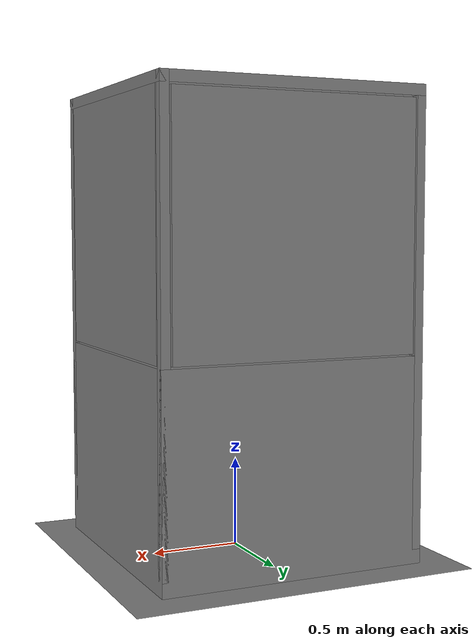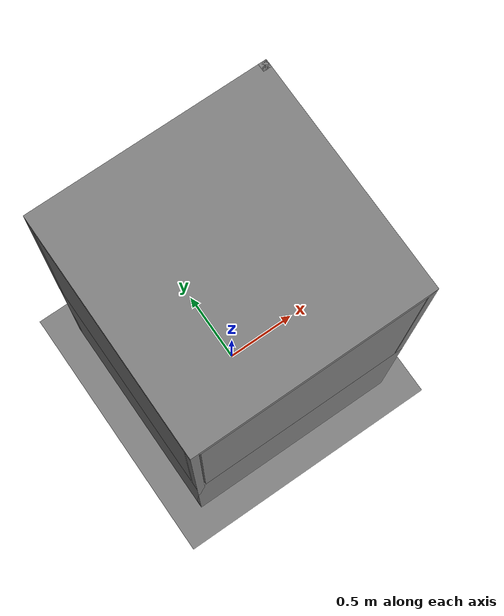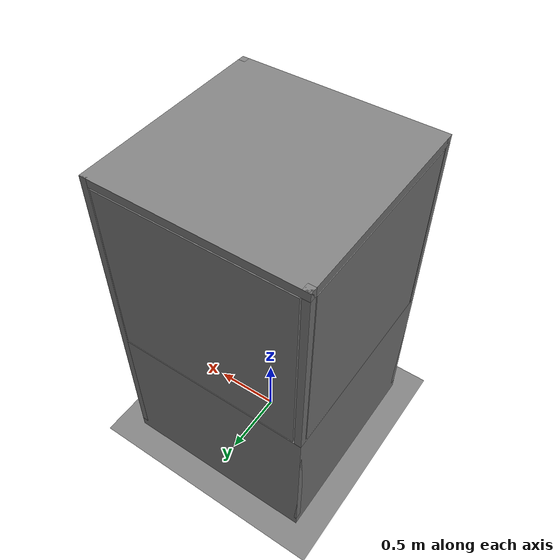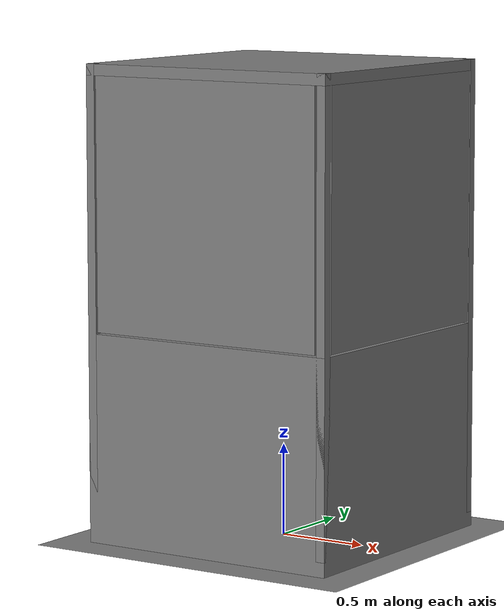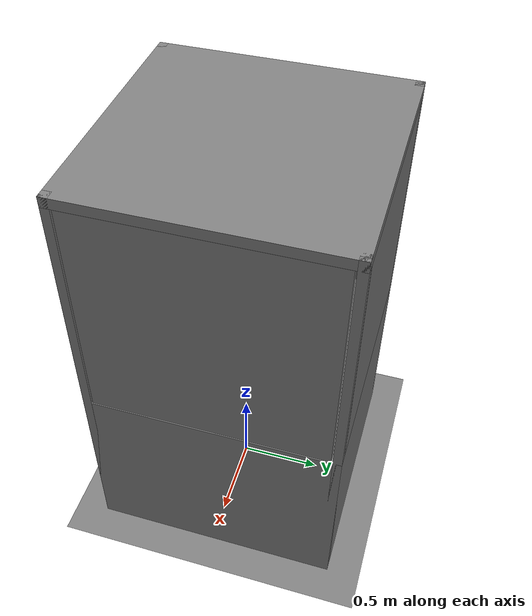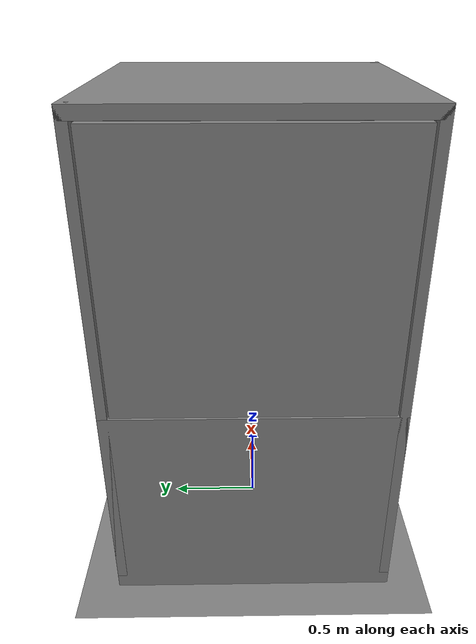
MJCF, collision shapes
<mujoco model="aic_world">
  <compiler angle="radian"/>

  <option gravity="0 0 -9.8" magnetic="5.5645e-06 2.28758e-05 -4.23884e-05"/>

  <visual>
    <headlight ambient="0 0 0" diffuse="0 0 0" specular="0 0 0"/>
  </visual>

  <default>
    <default class="world_default"/>
    <default class="cable_default">
      <joint damping="0.1"/>
    </default>
  </default>

  <extension>
    <plugin plugin="mujoco.elasticity.cable">
      <instance name="composite">
        <config key="twist" value="1e2"/>
        <config key="bend" value="4e1"/>
      </instance>
    </plugin>
  </extension>

  <asset>
    <texture type="2d" colorspace="linear" name="texture_7d2d03d984e0bd4273d245008f309f6a2ab0c0d6961ab1d51b3160a265d7b5a4_floor_visual_Plane" file="7d2d03d984e0bd4273d245008f309f6a2ab0c0d6961ab1d51b3160a265d7b5a4_floor_visual_b3a94635-54d6beff6424435d3828cb4c8a1278d9ea3964b0.png"/>
    <texture type="2d" colorspace="linear" name="texture_79d083415a0beb7006489abaa2f7f67624ecb5cc84df7fd21d83dada2e2c75a0_lc_plug_visual_merged_0" file="79d083415a0beb7006489abaa2f7f67624ecb5cc84df7fd21d83dada2e2c75a0_lc_plug_visual_03dabf32-0905e8a8aa368516e682f6ec84258100cdb4efef.png"/>
    <texture type="2d" colorspace="linear" name="texture_07ae86fedcbbab3b5759a8a6e79ba15af5075968dd5eac2cb4666913710c9b1a_sfp_module_visual_Body.005" file="07ae86fedcbbab3b5759a8a6e79ba15af5075968dd5eac2cb4666913710c9b1a_sfp_module_visual_8fc63b58-7471eafc55dcb668ae68adfe70a147b363ba3be9.png"/>
    <texture type="2d" colorspace="linear" name="texture_07ae86fedcbbab3b5759a8a6e79ba15af5075968dd5eac2cb4666913710c9b1a_sfp_module_visual_Body.005_1" file="07ae86fedcbbab3b5759a8a6e79ba15af5075968dd5eac2cb4666913710c9b1a_sfp_module_visual_1f09e86a-a4dc4a72bd6e778067310898a5c179607fd78966.png"/>
    <texture type="2d" colorspace="linear" name="texture_39e0c36083c2ebca1948ca6b7f99419210f3b34232289a37761dbe25cefc0443_sc_plug_visual_merged_0" file="39e0c36083c2ebca1948ca6b7f99419210f3b34232289a37761dbe25cefc0443_sc_plug_visual_5875f865-48f62b2f4840d852c7f39a01e6c183037dc1485b.png"/>
    <material name="material_21630dbca88254236676b9eaa3d656b1a410544dc4182b3953f5492d6064c1ce_enclosure_visual_V1014952.001" class="world_default" shininess="30" rgba="0.290196 0.290196 0.290196 1"/>
    <material name="material_21630dbca88254236676b9eaa3d656b1a410544dc4182b3953f5492d6064c1ce_enclosure_visual_V1014952.001_1" class="world_default" shininess="30" rgba="0.129412 0.129412 0.133333 1"/>
    <material name="material_21630dbca88254236676b9eaa3d656b1a410544dc4182b3953f5492d6064c1ce_light_visual_Plane.001" class="world_default" shininess="30" rgba="0.5 0.5 0.5 1"/>
    <material name="material_7d2d03d984e0bd4273d245008f309f6a2ab0c0d6961ab1d51b3160a265d7b5a4_floor_visual_Plane" class="world_default" texture="texture_7d2d03d984e0bd4273d245008f309f6a2ab0c0d6961ab1d51b3160a265d7b5a4_floor_visual_Plane" shininess="30" rgba="0.5 0.5 0.5 1"/>
    <material name="material_7d2d03d984e0bd4273d245008f309f6a2ab0c0d6961ab1d51b3160a265d7b5a4_walls_visual_Curve.001" class="world_default" shininess="30" rgba="0.0196078 0.0196078 0.0196078 1"/>
    <material name="material_7d2d03d984e0bd4273d245008f309f6a2ab0c0d6961ab1d51b3160a265d7b5a4_walls_visual_merged_1" class="world_default" shininess="30" rgba="0.262745 0.262745 0.262745 1"/>
    <material name="material_7d2d03d984e0bd4273d245008f309f6a2ab0c0d6961ab1d51b3160a265d7b5a4_walls_visual_Plane.003_1" class="world_default" shininess="30" rgba="0.8 0.8 0.8 1"/>
    <material name="material_7d2d03d984e0bd4273d245008f309f6a2ab0c0d6961ab1d51b3160a265d7b5a4_walls_visual_Plane.002" class="world_default" shininess="30" rgba="0.207843 0.207843 0.207843 1"/>
    <material name="material_79d083415a0beb7006489abaa2f7f67624ecb5cc84df7fd21d83dada2e2c75a0_lc_plug_visual_merged_0" class="world_default" texture="texture_79d083415a0beb7006489abaa2f7f67624ecb5cc84df7fd21d83dada2e2c75a0_lc_plug_visual_merged_0" shininess="30" rgba="0.5 0.5 0.5 1"/>
    <material name="material_07ae86fedcbbab3b5759a8a6e79ba15af5075968dd5eac2cb4666913710c9b1a_sfp_module_visual_Body.005" class="world_default" texture="texture_07ae86fedcbbab3b5759a8a6e79ba15af5075968dd5eac2cb4666913710c9b1a_sfp_module_visual_Body.005" shininess="30" rgba="0.5 0.5 0.5 1"/>
    <material name="material_07ae86fedcbbab3b5759a8a6e79ba15af5075968dd5eac2cb4666913710c9b1a_sfp_module_visual_Body.005_1" class="world_default" texture="texture_07ae86fedcbbab3b5759a8a6e79ba15af5075968dd5eac2cb4666913710c9b1a_sfp_module_visual_Body.005_1" shininess="30" rgba="0.5 0.5 0.5 1"/>
    <material name="material_39e0c36083c2ebca1948ca6b7f99419210f3b34232289a37761dbe25cefc0443_sc_plug_visual_merged_0" class="world_default" texture="texture_39e0c36083c2ebca1948ca6b7f99419210f3b34232289a37761dbe25cefc0443_sc_plug_visual_merged_0" shininess="30" rgba="0.5 0.5 0.5 1"/>
    <material name="material_19f4a95a97b71184a4988be290e52b57fe33862b52d650c82c5d8bc673fc5603_base_visual_ISO_4762_-_M3_x_8.019" class="world_default" shininess="30" rgba="0.0352941 0.0352941 0.0313726 1"/>
    <material name="material_19f4a95a97b71184a4988be290e52b57fe33862b52d650c82c5d8bc673fc5603_base_visual_ISO_4762_-_M3_x_8.019_1" class="world_default" shininess="30" rgba="0.0313726 0.0313726 0.0313726 1"/>
    <material name="material_19f4a95a97b71184a4988be290e52b57fe33862b52d650c82c5d8bc673fc5603_base_visual_ISO_4762_-_M3_x_8.019_2" class="world_default" shininess="30" rgba="0.215686 0 0.215686 1"/>
    <material name="material_0caf49b143bca9a0c9a13d66d2f75335ec2e74c5bba5cfb7bf0c411aed5bc2cd_sfp_mount_visual_ISO_4762_-_M2_x_8.011" class="world_default" shininess="30" rgba="0.0313726 0.0313726 0.0313726 1"/>
    <material name="material_0caf49b143bca9a0c9a13d66d2f75335ec2e74c5bba5cfb7bf0c411aed5bc2cd_sfp_mount_visual_ISO_4762_-_M2_x_8.011_1" class="world_default" shininess="30" rgba="0.0352941 0.0352941 0.0313726 1"/>
    <mesh name="21630dbca88254236676b9eaa3d656b1a410544dc4182b3953f5492d6064c1ce_enclosure_visual_V1014952.001" class="world_default" content_type="model/obj" file="21630dbca88254236676b9eaa3d656b1a410544dc4182b3953f5492d6064c1ce_enclosure_visual_V1014952.001-c990efe7b9dfe87aa065fd6eb3960ce051ae2aef.obj" inertia="shell"/>
    <mesh name="21630dbca88254236676b9eaa3d656b1a410544dc4182b3953f5492d6064c1ce_enclosure_visual_V1014952.001_1" class="world_default" content_type="model/obj" file="21630dbca88254236676b9eaa3d656b1a410544dc4182b3953f5492d6064c1ce_enclosure_visual_V1014952.001_1-807e07de06af157c84b994a232617507a7059420.obj" inertia="shell"/>
    <mesh name="21630dbca88254236676b9eaa3d656b1a410544dc4182b3953f5492d6064c1ce_light_visual_Plane.001" class="world_default" content_type="model/obj" file="21630dbca88254236676b9eaa3d656b1a410544dc4182b3953f5492d6064c1ce_light_visual_Plane.001-a8a774a80bc239d73769a498eae528b206eebcb0.obj" inertia="shell"/>
    <mesh name="7d2d03d984e0bd4273d245008f309f6a2ab0c0d6961ab1d51b3160a265d7b5a4_floor_visual_Plane" class="world_default" content_type="model/obj" file="7d2d03d984e0bd4273d245008f309f6a2ab0c0d6961ab1d51b3160a265d7b5a4_floor_visual_Plane-4dc7f6150ad7c239769a0860a01efb2015657aea.obj" inertia="shell"/>
    <mesh name="7d2d03d984e0bd4273d245008f309f6a2ab0c0d6961ab1d51b3160a265d7b5a4_walls_visual_Curve.001" class="world_default" content_type="model/obj" file="7d2d03d984e0bd4273d245008f309f6a2ab0c0d6961ab1d51b3160a265d7b5a4_walls_visual_Curve.001-4d7c79ac2e958832fdb15589262141ca1b80d3a5.obj" inertia="shell"/>
    <mesh name="7d2d03d984e0bd4273d245008f309f6a2ab0c0d6961ab1d51b3160a265d7b5a4_walls_visual_merged_1" class="world_default" content_type="model/obj" file="7d2d03d984e0bd4273d245008f309f6a2ab0c0d6961ab1d51b3160a265d7b5a4_walls_visual_merged_1-359a22140d528747936e80bedf90e1437a177a9f.obj" inertia="shell"/>
    <mesh name="7d2d03d984e0bd4273d245008f309f6a2ab0c0d6961ab1d51b3160a265d7b5a4_walls_visual_Plane.003_1" class="world_default" content_type="model/obj" file="7d2d03d984e0bd4273d245008f309f6a2ab0c0d6961ab1d51b3160a265d7b5a4_walls_visual_Plane.003_1-cd05ed21fa19a2784fb772d7519abf7c31c8b85f.obj" inertia="shell"/>
    <mesh name="7d2d03d984e0bd4273d245008f309f6a2ab0c0d6961ab1d51b3160a265d7b5a4_walls_visual_Plane.002" class="world_default" content_type="model/obj" file="7d2d03d984e0bd4273d245008f309f6a2ab0c0d6961ab1d51b3160a265d7b5a4_walls_visual_Plane.002-ee4f781765eec46c2256d941981732d4b1857f24.obj" inertia="shell"/>
    <mesh name="79d083415a0beb7006489abaa2f7f67624ecb5cc84df7fd21d83dada2e2c75a0_lc_plug_visual_merged_0" class="world_default" content_type="model/obj" file="79d083415a0beb7006489abaa2f7f67624ecb5cc84df7fd21d83dada2e2c75a0_lc_plug_visual_merged_0-fdaf59710fc3cc118a7df05add4ff4205edda4ef.obj" inertia="shell"/>
    <mesh name="07ae86fedcbbab3b5759a8a6e79ba15af5075968dd5eac2cb4666913710c9b1a_sfp_module_visual_Body.005" class="world_default" content_type="model/obj" file="07ae86fedcbbab3b5759a8a6e79ba15af5075968dd5eac2cb4666913710c9b1a_sfp_module_visual_Body.005-f93147e1e403de321fb70c06a4b1e00f20feb9fd.obj" inertia="shell"/>
    <mesh name="07ae86fedcbbab3b5759a8a6e79ba15af5075968dd5eac2cb4666913710c9b1a_sfp_module_visual_Body.005_1" class="world_default" content_type="model/obj" file="07ae86fedcbbab3b5759a8a6e79ba15af5075968dd5eac2cb4666913710c9b1a_sfp_module_visual_Body.005_1-4af964a95522e2593eb6381eca4f09ef239782c7.obj" inertia="shell"/>
    <mesh name="39e0c36083c2ebca1948ca6b7f99419210f3b34232289a37761dbe25cefc0443_sc_plug_visual_merged_0" class="world_default" content_type="model/obj" file="39e0c36083c2ebca1948ca6b7f99419210f3b34232289a37761dbe25cefc0443_sc_plug_visual_merged_0-67f94accf247f722dd4954d7448d7956402901f2.obj" inertia="shell"/>
    <mesh name="19f4a95a97b71184a4988be290e52b57fe33862b52d650c82c5d8bc673fc5603_base_visual_ISO_4762_-_M3_x_8.019" class="world_default" content_type="model/obj" file="19f4a95a97b71184a4988be290e52b57fe33862b52d650c82c5d8bc673fc5603_base_visual_ISO_4762_-_M3_x_8.019-f814bb518c42769543ab6246809f3fe4af5c2b64.obj" inertia="shell"/>
    <mesh name="19f4a95a97b71184a4988be290e52b57fe33862b52d650c82c5d8bc673fc5603_base_visual_ISO_4762_-_M3_x_8.019_1" class="world_default" content_type="model/obj" file="19f4a95a97b71184a4988be290e52b57fe33862b52d650c82c5d8bc673fc5603_base_visual_ISO_4762_-_M3_x_8.019_1-0b276ba9910a7642121235b62d2afc47c3995782.obj" inertia="shell"/>
    <mesh name="19f4a95a97b71184a4988be290e52b57fe33862b52d650c82c5d8bc673fc5603_base_visual_ISO_4762_-_M3_x_8.019_2" class="world_default" content_type="model/obj" file="19f4a95a97b71184a4988be290e52b57fe33862b52d650c82c5d8bc673fc5603_base_visual_ISO_4762_-_M3_x_8.019_2-7b96569be9572803417c5650ee83c9c883b44191.obj" inertia="shell"/>
    <mesh name="0caf49b143bca9a0c9a13d66d2f75335ec2e74c5bba5cfb7bf0c411aed5bc2cd_sfp_mount_visual_ISO_4762_-_M2_x_8.011" class="world_default" content_type="model/obj" file="0caf49b143bca9a0c9a13d66d2f75335ec2e74c5bba5cfb7bf0c411aed5bc2cd_sfp_mount_visual_ISO_4762_-_M2_x_8.011-e79a298280ce559f60558a5df64e118c814f63e4.obj" inertia="shell"/>
    <mesh name="0caf49b143bca9a0c9a13d66d2f75335ec2e74c5bba5cfb7bf0c411aed5bc2cd_sfp_mount_visual_ISO_4762_-_M2_x_8.011_1" class="world_default" content_type="model/obj" file="0caf49b143bca9a0c9a13d66d2f75335ec2e74c5bba5cfb7bf0c411aed5bc2cd_sfp_mount_visual_ISO_4762_-_M2_x_8.011_1-3a79ef8883f6645921d3fa2c67cf381141e6ea26.obj" inertia="shell"/>
  </asset>

  <worldbody>
    <light name="enclosure_light" class="world_default" pos="0 0 2.5" dir="0 0 -1" intensity="0.4" range="2" attenuation="1 0.01 0.001" cutoff="114.592" exponent="0.993023" diffuse="1 1 1" specular="0.1 0.1 0.1"/>
    <light name="ceiling_01" class="world_default" pos="2 2 6" dir="0 0 -1" intensity="2" range="9" castshadow="false" attenuation="1 0.01 0.001" cutoff="360" diffuse="1 1 1" specular="0.1 0.1 0.1"/>
    <light name="ceiling_02" class="world_default" pos="-2 -2 6" dir="0 0 -1" intensity="2" range="9" castshadow="false" attenuation="1 0.01 0.001" cutoff="360" diffuse="1 1 1" specular="0.1 0.1 0.1"/>
    <body name="enclosure_link">
      <inertial pos="0 0 0" mass="1" diaginertia="1 1 1"/>
      <geom name="v1015026001_collider_box" class="world_default" size="0.75 0.569492 0.75" pos="-0.010998 0.009283 0.569706" quat="-1.22475e-07 1.22474e-07 -0.707107 -0.707107" type="box" group="3"/>
      <geom name="v1015028001_collider_box" class="world_default" size="0.0254 0.0254 1.25" pos="0.713602 0.733883 1.3292" quat="1.73205e-07 0 0 -1" type="box" group="3"/>
      <geom name="v1015013001_collider_box" class="world_default" size="0.0304 0.75 0.75" pos="-0.010998 0.009283 2.5488" quat="0.707107 0 -0.707107 0" type="box" group="3"/>
      <geom name="v1015027_collider_box" class="world_default" size="0.0254 0.0254 1.25" pos="-0.735598 0.733883 1.3292" quat="1.73205e-07 0 0 -1" type="box" group="3"/>
      <geom name="v1015029_collider_box" class="world_default" size="0.0254 0.0254 1.25" pos="-0.735598 -0.715317 1.3292" quat="0 1.73205e-07 -1 -1.73205e-07" type="box" group="3"/>
      <geom name="v1015030_collider_box" class="world_default" size="0.0254 0.0254 1.25" pos="0.713602 -0.715317 1.3292" quat="1.73205e-07 0 0 -1" type="box" group="3"/>
      <geom name="enclosure_visual" class="world_default" type="mesh" contype="0" conaffinity="0" material="material_21630dbca88254236676b9eaa3d656b1a410544dc4182b3953f5492d6064c1ce_enclosure_visual_V1014952.001" mesh="21630dbca88254236676b9eaa3d656b1a410544dc4182b3953f5492d6064c1ce_enclosure_visual_V1014952.001"/>
      <geom name="enclosure_visual_0" class="world_default" type="mesh" contype="0" conaffinity="0" material="material_21630dbca88254236676b9eaa3d656b1a410544dc4182b3953f5492d6064c1ce_enclosure_visual_V1014952.001_1" mesh="21630dbca88254236676b9eaa3d656b1a410544dc4182b3953f5492d6064c1ce_enclosure_visual_V1014952.001_1"/>
      <geom name="light_visual" class="world_default" type="mesh" contype="0" conaffinity="0" material="material_21630dbca88254236676b9eaa3d656b1a410544dc4182b3953f5492d6064c1ce_light_visual_Plane.001" mesh="21630dbca88254236676b9eaa3d656b1a410544dc4182b3953f5492d6064c1ce_light_visual_Plane.001"/>
    </body>
    <body name="enclosure_walls_link">
      <inertial pos="0 0 0" mass="1" diaginertia="1 1 1"/>
      <geom name="v1015062006_collider_box" class="world_default" size="0.0250005 0.6796 0.6892" pos="-0.010998 0.734284 1.8288" quat="0.5 0.5 -0.5 -0.5" type="box" group="3"/>
      <geom name="v1015062005_collider_box" class="world_default" size="0.6892 0.6796 0.025" pos="-0.735998 0.009283 1.8288" quat="0.5 0.5 -0.5 -0.5" type="box" group="3"/>
      <geom name="v1015062007_collider_box" class="world_default" size="0.025 0.6846 0.6892" pos="-0.010998 -0.715717 1.8338" quat="0.5 0.5 -0.5 -0.5" type="box" group="3"/>
      <geom name="v1015062008_collider_box" class="world_default" size="0.6892 0.6846 0.025" pos="0.714002 0.009283 1.8338" quat="0.5 0.5 -0.5 -0.5" type="box" group="3"/>
    </body>
    <body name="floor_link">
      <inertial pos="0 0 0" mass="1" diaginertia="1 1 1"/>
      <geom name="floor_cylinder" class="world_default" size="5 5 1" type="plane" group="3"/>
      <geom name="floor_visual" class="world_default" type="mesh" contype="0" conaffinity="0" material="material_7d2d03d984e0bd4273d245008f309f6a2ab0c0d6961ab1d51b3160a265d7b5a4_floor_visual_Plane" mesh="7d2d03d984e0bd4273d245008f309f6a2ab0c0d6961ab1d51b3160a265d7b5a4_floor_visual_Plane"/>
      <geom name="walls_visual" class="world_default" type="mesh" contype="0" conaffinity="0" material="material_7d2d03d984e0bd4273d245008f309f6a2ab0c0d6961ab1d51b3160a265d7b5a4_walls_visual_Curve.001" mesh="7d2d03d984e0bd4273d245008f309f6a2ab0c0d6961ab1d51b3160a265d7b5a4_walls_visual_Curve.001"/>
      <geom name="walls_visual_0" class="world_default" type="mesh" contype="0" conaffinity="0" material="material_7d2d03d984e0bd4273d245008f309f6a2ab0c0d6961ab1d51b3160a265d7b5a4_walls_visual_merged_1" mesh="7d2d03d984e0bd4273d245008f309f6a2ab0c0d6961ab1d51b3160a265d7b5a4_walls_visual_merged_1"/>
      <geom name="walls_visual_1" class="world_default" type="mesh" contype="0" conaffinity="0" material="material_7d2d03d984e0bd4273d245008f309f6a2ab0c0d6961ab1d51b3160a265d7b5a4_walls_visual_Plane.003_1" mesh="7d2d03d984e0bd4273d245008f309f6a2ab0c0d6961ab1d51b3160a265d7b5a4_walls_visual_Plane.003_1"/>
      <geom name="walls_visual_2" class="world_default" type="mesh" contype="0" conaffinity="0" material="material_7d2d03d984e0bd4273d245008f309f6a2ab0c0d6961ab1d51b3160a265d7b5a4_walls_visual_Plane.002" mesh="7d2d03d984e0bd4273d245008f309f6a2ab0c0d6961ab1d51b3160a265d7b5a4_walls_visual_Plane.002"/>
    </body>
    <body name="cable_end_0" childclass="cable_default" pos="0.171400 0.020606 1.511889" quat="0.712741 0.312130 -0.052173 0.625982">
      <freejoint name="cable_end_0_free"/>
      <inertial pos="0 0 0" mass="0.0025" diaginertia="1e-6 1e-6 1e-6"/>
      <geom name="base_vis" class="world_default" size="0.002" contype="0" conaffinity="0"/>
      <body name="cable_connection_0" pos="1.25047e-08 8.16282e-08 -1.95829e-07" quat="0.568653 -0.7585 -0.304364 -0.0931319">
        <inertial pos="0 0 0" mass="0.01" diaginertia="1e-6 1e-6 1e-6"/>
        <joint name="joint_connection_end_0" class="world_default" pos="0 0 0" type="ball" damping="0.2"/>
        <geom name="visual_0_0" class="world_default" size="0.001 0.00367636" pos="-0.00367636 0.00425 0" quat="0.673802 0.214463 0.673798 -0.214461" type="cylinder" contype="0" conaffinity="0"/>
        <geom name="visual_1_0" class="world_default" size="0.001 0.00367636" pos="-0.00367636 -0.00425 0" quat="0.673802 -0.214463 0.673798 0.214461" type="cylinder" contype="0" conaffinity="0"/>
        <body name="link_1" pos="0.00491422 0.0231421 -0.00403678" quat="0.105615 -0.279044 -0.711501 -0.636197">
          <inertial pos="0 0 0" mass="0.0025" diaginertia="1e-6 1e-6 1e-6"/>
          <joint name="joint_end_0" pos="0 0 -0.024" type="ball"/>
          <geom name="link_1_collision" size="0.002 0.018" pos="0 0 0.006" type="cylinder" group="3"/>
          <geom name="sphere_1_collision" size="0.002" pos="0 0 0.024" group="3"/>
          <geom name="link_1_vis" size="0.002 0.024" type="cylinder" contype="0" conaffinity="0"/>
          <geom name="sphere_1_vis" size="0.002" pos="0 0 0.024" contype="0" conaffinity="0"/>
          <body name="link_2" pos="0.00608341 -0.00758186 0.0459437" quat="0.978077 0.158393 0.133259 -0.0227629">
            <inertial pos="0 0 0" mass="0.0025" diaginertia="1e-6 1e-6 1e-6"/>
            <joint name="joint_1" pos="0 0 -0.024" type="ball"/>
            <geom name="link_2_collision" size="0.002 0.024" type="cylinder" group="3"/>
            <geom name="sphere_2_collision" size="0.002" pos="0 0 0.024" group="3"/>
            <geom name="link_2_vis" size="0.002 0.024" type="cylinder" contype="0" conaffinity="0"/>
            <geom name="sphere_2_vis" size="0.002" pos="0 0 0.024" contype="0" conaffinity="0"/>
            <body name="link_3" pos="0.000343805 -0.00668268 0.0470486" quat="0.989784 0.140421 0.0104012 -0.0223824">
              <inertial pos="0 0 0" mass="0.0025" diaginertia="1e-6 1e-6 1e-6"/>
              <joint name="joint_2" pos="0 0 -0.024" type="ball"/>
              <geom name="link_3_collision" size="0.002 0.024" type="cylinder" group="3"/>
              <geom name="sphere_3_collision" size="0.002" pos="0 0 0.024" group="3"/>
              <geom name="link_3_vis" size="0.002 0.024" type="cylinder" contype="0" conaffinity="0"/>
              <geom name="sphere_3_vis" size="0.002" pos="0 0 0.024" contype="0" conaffinity="0"/>
              <body name="link_4" pos="-0.0022296 -0.00468828 0.0474319" quat="0.993743 0.0994111 -0.044222 -0.0252245">
                <inertial pos="0 0 0" mass="0.0025" diaginertia="1e-6 1e-6 1e-6"/>
                <joint name="joint_3" pos="0 0 -0.024" type="ball"/>
                <geom name="link_4_collision" size="0.002 0.024" type="cylinder" group="3"/>
                <geom name="sphere_4_collision" size="0.002" pos="0 0 0.024" group="3"/>
                <geom name="link_4_vis" size="0.002 0.024" type="cylinder" contype="0" conaffinity="0"/>
                <geom name="sphere_4_vis" size="0.002" pos="0 0 0.024" contype="0" conaffinity="0"/>
                <body name="link_5" pos="-0.00370041 -0.00315661 0.0475025" quat="0.99397 0.0692135 -0.0747307 -0.0405953">
                  <inertial pos="0 0 0" mass="0.0025" diaginertia="1e-6 1e-6 1e-6"/>
                  <joint name="joint_4" pos="0 0 -0.024" type="ball"/>
                  <geom name="link_5_collision" size="0.002 0.024" type="cylinder" group="3"/>
                  <geom name="sphere_5_collision" size="0.002" pos="0 0 0.024" group="3"/>
                  <geom name="link_5_vis" size="0.002 0.024" type="cylinder" contype="0" conaffinity="0"/>
                  <geom name="sphere_5_vis" size="0.002" pos="0 0 0.024" contype="0" conaffinity="0"/>
                  <body name="link_6" pos="-0.00400972 -0.0018031 0.0475941" quat="0.993712 0.04303 -0.0813204 -0.0638035">
                    <inertial pos="0 0 0" mass="0.0025" diaginertia="1e-6 1e-6 1e-6"/>
                    <joint name="joint_5" pos="0 0 -0.024" type="ball"/>
                    <geom name="link_6_collision" size="0.002 0.024" type="cylinder" group="3"/>
                    <geom name="sphere_6_collision" size="0.002" pos="0 0 0.024" group="3"/>
                    <geom name="link_6_vis" size="0.002 0.024" type="cylinder" contype="0" conaffinity="0"/>
                    <geom name="sphere_6_vis" size="0.002" pos="0 0 0.024" contype="0" conaffinity="0"/>
                    <body name="link_7" pos="-0.00351767 -0.000710191 0.0477308" quat="0.993356 0.0212091 -0.0719119 -0.0873041">
                      <inertial pos="0 0 0" mass="0.0025" diaginertia="1e-6 1e-6 1e-6"/>
                      <joint name="joint_6" pos="0 0 -0.024" type="ball"/>
                      <geom name="link_7_collision" size="0.002 0.024" type="cylinder" group="3"/>
                      <geom name="sphere_7_collision" size="0.002" pos="0 0 0.024" group="3"/>
                      <geom name="link_7_vis" size="0.002 0.024" type="cylinder" contype="0" conaffinity="0"/>
                      <geom name="sphere_7_vis" size="0.002" pos="0 0 0.024" contype="0" conaffinity="0"/>
                      <body name="link_8" pos="-0.00241602 0.000201002 0.047878" quat="0.993427 0.00100338 -0.0505653 -0.102685">
                        <inertial pos="0 0 0" mass="0.0025" diaginertia="1e-6 1e-6 1e-6"/>
                        <joint name="joint_7" pos="0 0 -0.024" type="ball"/>
                        <geom name="link_8_collision" size="0.002 0.024" type="cylinder" group="3"/>
                        <geom name="sphere_8_collision" size="0.002" pos="0 0 0.024" group="3"/>
                        <geom name="link_8_vis" size="0.002 0.024" type="cylinder" contype="0" conaffinity="0"/>
                        <geom name="sphere_8_vis" size="0.002" pos="0 0 0.024" contype="0" conaffinity="0"/>
                        <body name="link_9" pos="-0.00117212 0.0010058 0.0479515" quat="0.993968 -0.0182862 -0.0264966 -0.104842">
                          <inertial pos="0 0 0" mass="0.0025" diaginertia="1e-6 1e-6 1e-6"/>
                          <joint name="joint_8" pos="0 0 -0.024" type="ball"/>
                          <geom name="link_9_collision" size="0.002 0.024" type="cylinder" group="3"/>
                          <geom name="sphere_9_collision" size="0.002" pos="0 0 0.024" group="3"/>
                          <geom name="link_9_vis" size="0.002 0.024" type="cylinder" contype="0" conaffinity="0"/>
                          <geom name="sphere_9_vis" size="0.002" pos="0 0 0.024" contype="0" conaffinity="0"/>
                          <body name="link_10" pos="-0.000282197 0.00176883 0.0479333" quat="0.994692 -0.0361244 -0.00940201 -0.0958879">
                            <inertial pos="0 0 0" mass="0.0025" diaginertia="1e-6 1e-6 1e-6"/>
                            <joint name="joint_9" pos="0 0 -0.024" type="ball"/>
                            <geom name="link_10_collision" size="0.002 0.024" type="cylinder" group="3"/>
                            <geom name="sphere_10_collision" size="0.002" pos="0 0 0.024" group="3"/>
                            <geom name="link_10_vis" size="0.002 0.024" type="cylinder" contype="0" conaffinity="0"/>
                            <geom name="sphere_10_vis" size="0.002" pos="0 0 0.024" contype="0" conaffinity="0"/>
                            <body name="link_11" pos="0.0012752 0.00268708 0.0478161" quat="0.993821 -0.0583049 0.0213245 -0.0920072">
                              <inertial pos="0 0 0" mass="0.0025" diaginertia="1e-6 1e-6 1e-6"/>
                              <joint name="joint_10" pos="0 0 -0.024" type="ball"/>
                              <geom name="link_11_collision" size="0.002 0.024" type="cylinder" group="3"/>
                              <geom name="sphere_11_collision" size="0.002" pos="0 0 0.024" group="3"/>
                              <geom name="link_11_vis" size="0.002 0.024" type="cylinder" contype="0" conaffinity="0"/>
                              <geom name="sphere_11_vis" size="0.002" pos="0 0 0.024" contype="0" conaffinity="0"/>
                              <body name="link_12" pos="0.00327072 0.00422971 0.0473986" quat="0.991317 -0.0932098 0.0622678 -0.0687446">
                                <inertial pos="0 0 0" mass="0.0025" diaginertia="1e-6 1e-6 1e-6"/>
                                <joint name="joint_11" pos="0 0 -0.024" type="ball"/>
                                <geom name="link_12_collision" size="0.002 0.024" type="cylinder" group="3"/>
                                <geom name="sphere_12_collision" size="0.002" pos="0 0 0.024" group="3"/>
                                <geom name="link_12_vis" size="0.002 0.024" type="cylinder" contype="0" conaffinity="0"/>
                                <geom name="sphere_12_vis" size="0.002" pos="0 0 0.024" contype="0" conaffinity="0"/>
                                <body name="link_13" pos="0.00482261 0.00599302 0.0467345" quat="0.985833 -0.13074 0.0963345 -0.0419445">
                                  <inertial pos="0 0 0" mass="0.0025" diaginertia="1e-6 1e-6 1e-6"/>
                                  <joint name="joint_12" pos="0 0 -0.024" type="ball"/>
                                  <geom name="link_13_collision" size="0.002 0.024" type="cylinder" group="3"/>
                                  <geom name="sphere_13_collision" size="0.002" pos="0 0 0.024" group="3"/>
                                  <geom name="link_13_vis" size="0.002 0.024" type="cylinder" contype="0" conaffinity="0"/>
                                  <geom name="sphere_13_vis" size="0.002" pos="0 0 0.024" contype="0" conaffinity="0"/>
                                  <body name="link_14" pos="0.00591403 0.00751494 0.0460132" quat="0.978954 -0.161892 0.123267 -0.0156344">
                                    <inertial pos="0 0 0" mass="0.0025" diaginertia="1e-6 1e-6 1e-6"/>
                                    <joint name="joint_13" pos="0 0 -0.024" type="ball"/>
                                    <geom name="link_14_collision" size="0.002 0.024" type="cylinder" group="3"/>
                                    <geom name="sphere_14_collision" size="0.002" pos="0 0 0.024" group="3"/>
                                    <geom name="link_14_vis" size="0.002 0.024" type="cylinder" contype="0" conaffinity="0"/>
                                    <geom name="sphere_14_vis" size="0.002" pos="0 0 0.024" contype="0" conaffinity="0"/>
                                    <body name="link_15" pos="0.00664439 0.00819207 0.0455587" quat="0.974202 -0.174008 0.14349 0.00795143">
                                      <inertial pos="0 0 0" mass="0.0025" diaginertia="1e-6 1e-6 1e-6"/>
                                      <joint name="joint_14" pos="0 0 -0.024" type="ball"/>
                                      <geom name="link_15_collision" size="0.002 0.024" type="cylinder" group="3"/>
                                      <geom name="sphere_15_collision" size="0.002" pos="0 0 0.024" group="3"/>
                                      <geom name="link_15_vis" size="0.002 0.024" type="cylinder" contype="0" conaffinity="0"/>
                                      <geom name="sphere_15_vis" size="0.002" pos="0 0 0.024" contype="0" conaffinity="0"/>
                                      <body name="link_16" pos="0.00692301 0.00767899 0.0456603" quat="0.974941 -0.159938 0.152309 0.026676">
                                        <inertial pos="0 0 0" mass="0.0025" diaginertia="1e-6 1e-6 1e-6"/>
                                        <joint name="joint_15" pos="0 0 -0.024" type="ball"/>
                                        <geom name="link_16_collision" size="0.002 0.024" type="cylinder" group="3"/>
                                        <geom name="sphere_16_collision" size="0.002" pos="0 0 0.024" group="3"/>
                                        <geom name="link_16_vis" size="0.002 0.024" type="cylinder" contype="0" conaffinity="0"/>
                                        <geom name="sphere_16_vis" size="0.002" pos="0 0 0.024" contype="0" conaffinity="0"/>
                                        <body name="link_17" pos="0.00681244 0.00604806 0.0462056" quat="0.980344 -0.122562 0.149622 0.038944">
                                          <inertial pos="0 0 0" mass="0.0025" diaginertia="1e-6 1e-6 1e-6"/>
                                          <joint name="joint_16" pos="0 0 -0.024" type="ball"/>
                                          <geom name="link_17_collision" size="0.002 0.024" type="cylinder" group="3"/>
                                          <geom name="sphere_17_collision" size="0.002" pos="0 0 0.024" group="3"/>
                                          <geom name="link_17_vis" size="0.002 0.024" type="cylinder" contype="0" conaffinity="0"/>
                                          <geom name="sphere_17_vis" size="0.002" pos="0 0 0.024" contype="0" conaffinity="0"/>
                                          <body name="link_18" pos="0.00640867 0.00357157 0.0468514" quat="0.987016 -0.0693119 0.138307 0.0431988">
                                            <inertial pos="0 0 0" mass="0.0025" diaginertia="1e-6 1e-6 1e-6"/>
                                            <joint name="joint_17" pos="0 0 -0.024" type="ball"/>
                                            <geom name="link_18_collision" size="0.002 0.024" type="cylinder" group="3"/>
                                            <geom name="sphere_18_collision" size="0.002" pos="0 0 0.024" group="3"/>
                                            <geom name="link_18_vis" size="0.002 0.024" type="cylinder" contype="0" conaffinity="0"/>
                                            <geom name="sphere_18_vis" size="0.002" pos="0 0 0.024" contype="0" conaffinity="0"/>
                                            <body name="link_19" pos="0.00636467 0.00138148 0.0471004" quat="0.98985 -0.0239307 0.134876 0.0378613">
                                              <inertial pos="0 0 0" mass="0.0025" diaginertia="1e-6 1e-6 1e-6"/>
                                              <joint name="joint_18" pos="0 0 -0.024" type="ball"/>
                                              <geom name="link_19_collision" size="0.002 0.024" type="cylinder" group="3"/>
                                              <geom name="sphere_19_collision" size="0.002" pos="0 0 0.024" group="3"/>
                                              <geom name="link_19_vis" size="0.002 0.024" type="cylinder" contype="0" conaffinity="0"/>
                                              <geom name="sphere_19_vis" size="0.002" pos="0 0 0.024" contype="0" conaffinity="0"/>
                                              <body name="link_20" pos="0.0058536 -0.00106221 0.0472531" quat="0.991782 0.0257326 0.122227 0.0276918">
                                                <inertial pos="0 0 0" mass="0.0025" diaginertia="1e-6 1e-6 1e-6"/>
                                                <joint name="joint_19" pos="0 0 -0.024" type="ball"/>
                                                <geom name="link_20_collision" size="0.002 0.024" type="cylinder" group="3"/>
                                                <geom name="sphere_20_collision" size="0.002" pos="0 0 0.024" group="3"/>
                                                <geom name="link_20_vis" size="0.002 0.024" type="cylinder" contype="0" conaffinity="0"/>
                                                <geom name="sphere_20_vis" size="0.002" pos="0 0 0.024" contype="0" conaffinity="0"/>
                                                <body name="cable_connection_1" pos="1.11508e-06 -4.07664e-07 0.0240002" quat="0.776048 0.0593118 -0.626596 -0.0401108">
                                                  <inertial pos="0 0 0" mass="0.01" diaginertia="4e-4 4e-4 4e-4"/>
                                                  <joint name="joint_connection_end_1" class="world_default" pos="0 0 0" type="ball"/>
                                                  <geom name="collision_0" class="world_default" size="0.001 0.00180278" pos="0.00180278 -0.002 0" quat="0.676768 0.204909 0.676764 -0.204908" type="cylinder" group="3"/>
                                                  <geom name="collision_1" class="world_default" size="0.001 0.00180278" pos="0.00180278 0.002 0" quat="0.676768 -0.204909 0.676764 0.204908" type="cylinder" group="3"/>
                                                  <geom name="visual_0" class="world_default" size="0.001 0.00180278" pos="0.00180278 -0.002 0" quat="0.676768 0.204909 0.676764 -0.204908" type="cylinder" contype="0" conaffinity="0"/>
                                                  <geom name="visual_1" class="world_default" size="0.001 0.00180278" pos="0.00180278 0.002 0" quat="0.676768 -0.204909 0.676764 0.204908" type="cylinder" contype="0" conaffinity="0"/>
                                                  <body name="lc_plug_link" pos="0.041 3.9192e-08 1.53756e-08" quat="0.707109 7.32254e-08 -1.14792e-08 -0.707104">
                                                    <inertial pos="0 -0.00428702 8.58528e-05" quat="0.499139 0.500859 -0.500859 0.499139" mass="0.01" diaginertia="1.82581e-06 1.73585e-06 1.30866e-07"/>
                                                    <geom name="cube_collider_box.003" class="world_default" size="0.00225 0.00225 0.01" pos="0.003125 0.0097 0" quat="0.5 -0.5 0.5 0.5" type="box" group="3"/>
                                                    <geom name="cube_collider_box.002" class="world_default" size="0.00225 0.00225 0.01" pos="-0.003125 0.0097 0" quat="0.5 -0.5 0.5 0.5" type="box" group="3"/>
                                                    <geom name="cube001_collider_box.003" class="world_default" size="0.0061765 0.0028 0.001625" pos="0 0.002503 0.001434" quat="-1.73205e-07 0 1 0" type="box" group="3"/>
                                                    <geom name="cube001_collider_box.002" class="world_default" size="0.003325 0.0028 0.003016" pos="0 0.002503 -0.000413" quat="-1.73205e-07 0 1 0" type="box" group="3"/>
                                                    <geom name="cylinder001_collider_cylinder.001" class="world_default" size="0.000625 0.001502" pos="0.003125 0.0197 0" quat="0.707107 0.707107 0 0" type="cylinder" group="3"/>
                                                    <geom name="cylinder_collider_cylinder.001" class="world_default" size="0.000625 0.001502" pos="-0.003125 0.0197 0" quat="0.707107 0.707107 0 0" type="cylinder" group="3"/>
                                                    <geom name="1af02-003-ma2_collider_cylinder" class="world_default" size="0.002794 0.014351" pos="0.003125 -0.014628 0" quat="0.707107 -0.707107 0 0" type="cylinder" group="3"/>
                                                    <geom name="1af02-003-ma2001_collider_cylinder" class="world_default" size="0.002794 0.014351" pos="-0.003125 -0.014628 0" quat="0.707107 -0.707107 0 0" type="cylinder" group="3"/>
                                                    <geom name="lc_plug_visual" class="world_default" type="mesh" contype="0" conaffinity="0" material="material_79d083415a0beb7006489abaa2f7f67624ecb5cc84df7fd21d83dada2e2c75a0_lc_plug_visual_merged_0" mesh="79d083415a0beb7006489abaa2f7f67624ecb5cc84df7fd21d83dada2e2c75a0_lc_plug_visual_merged_0"/>
                                                    <body name="sfp_module_link" pos="-1.31524e-07 0.0384002 -1.27103e-07" quat="9.11948e-08 -1 -1.41454e-06 -1.27121e-06">
                                                      <inertial pos="0.000140388 0.0140944 0.000755794" quat="0.500874 0.506 -0.492487 0.500546" mass="0.02" diaginertia="3.76251e-06 3.53019e-06 5.94798e-07"/>
                                                      <geom name="port_collider_box" class="world_default" size="0.00071 0.000375 0.0101875" pos="-0.00571 0.022559 -0.00275" quat="0.707107 0.707107 0 0" type="box" group="3"/>
                                                      <geom name="port_collider_box.001" class="world_default" size="0.00125 0.000375 0.0101875" pos="0 0.022559 -0.00275" quat="0.707107 0.707107 0 0" type="box" group="3"/>
                                                      <geom name="port_collider_box.002" class="world_default" size="0.00642 9.5e-05 0.003651" pos="0 0.02732 -0.00447" quat="0.707107 0.707107 0 0" type="box" group="3"/>
                                                      <geom name="port_collider_box.003" class="world_default" size="0.00046 0.0041395 0.0101875" pos="0.00596 0.022559 -8.7e-05" quat="0.707107 0.707107 0 0" type="box" group="3"/>
                                                      <geom name="port_collider_box.004" class="world_default" size="0.00642 0.000674 0.0101875" pos="0 0.022559 0.003049" quat="0.707107 0.707107 0 0" type="box" group="3"/>
                                                      <geom name="port_collider_box.005" class="world_default" size="0.00046 0.0041395 0.0101875" pos="-0.00596 0.022559 -8.7e-05" quat="0.707107 0.707107 0 0" type="box" group="3"/>
                                                      <geom name="port_collider_box.006" class="world_default" size="0.00071 0.000375 0.0101875" pos="0.00571 0.022559 -0.00275" quat="0.707107 0.707107 0 0" type="box" group="3"/>
                                                      <geom name="port_collider_box.007" class="world_default" size="0.00075 0.0038735 0.0101875" pos="0 0.022559 -0.000239" quat="0.707107 0.707107 0 0" type="box" group="3"/>
                                                      <geom name="port_collider_box.008" class="world_default" size="0.00071 0.000503 0.0064415" pos="-0.00571 0.018813 -0.003546" quat="0.707107 0.707107 0 0" type="box" group="3"/>
                                                      <geom name="port_collider_box.009" class="world_default" size="0.00071 0.000503 0.0064415" pos="0.00571 0.018813 -0.003546" quat="0.707107 0.707107 0 0" type="box" group="3"/>
                                                      <geom name="latch_collider_box" class="world_default" size="0.00692 0.0008005 0.001713" pos="0 0.029531 -0.005175" quat="0.707107 0.707107 0 0" type="box" group="3"/>
                                                      <geom name="latch_collider_box.001" class="world_default" size="0.0005145 0.004772 0.00185" pos="0.006405 0.030896 0.000207" quat="0.707107 0.707107 0 0" type="box" group="3"/>
                                                      <geom name="latch_collider_box.002" class="world_default" size="0.00692 0.0011915 0.00185" pos="0 0.030896 0.004716" quat="0.707107 0.707107 0 0" type="box" group="3"/>
                                                      <geom name="latch_collider_box.003" class="world_default" size="0.0004825 0.004772 0.00185" pos="-0.006437 0.030896 0.000207" quat="0.707107 0.707107 0 0" type="box" group="3"/>
                                                      <geom name="head_collider_box" class="world_default" size="0.000642 0.005125 0.0027" pos="0.006358 0.026353 0.000375" quat="0.707107 0.707107 0 0" type="box" group="3"/>
                                                      <geom name="head_collider_box.001" class="world_default" size="0.000642 0.005485 0.0027" pos="-0.006358 0.026353 0.000765" quat="0.707107 0.707107 0 0" type="box" group="3"/>
                                                      <geom name="head_collider_box.002" class="world_default" size="0.007 0.0011225 0.0027" pos="0 0.026353 0.005128" quat="0.707107 0.707107 0 0" type="box" group="3"/>
                                                      <geom name="head_collider_box.003" class="world_default" size="0.007 0.0001875 0.0027" pos="0 0.026353 -0.004563" quat="0.707107 0.707107 0 0" type="box" group="3"/>
                                                      <geom name="body_collider_box" class="world_default" size="0.006875 0.02365 0.0003945" pos="0 0.001 0.00383" type="box" group="3"/>
                                                      <geom name="body_collider_box.001" class="world_default" size="0.006875 0.02365 8.9e-05" pos="0 0.001 -0.004138" type="box" group="3"/>
                                                      <geom name="body_collider_box.002" class="world_default" size="0.000287 0.02365 0.004225" pos="-0.006588 0.001 0" type="box" group="3"/>
                                                      <geom name="body_collider_box.003" class="world_default" size="0.0004055 0.02365 0.004225" pos="0.00647 0.001 0" type="box" group="3"/>
                                                      <geom name="port_collider_box.010" class="world_default" size="0.00642 0.0038815 0.0058645" pos="0 0.01229 0.000119" quat="0.707107 0.707107 0 0" type="box" group="3"/>
                                                      <geom name="port_collider_box002_collider_box" class="world_default" size="0.00642 0.0002045 0.0008005" pos="0 0.024453 -0.004254" quat="0.707107 0.707107 0 0" type="box" group="3"/>
                                                      <geom name="port_collider_box.011" class="world_default" size="0.00125 0.000503 0.0064415" pos="0 0.018813 -0.003546" quat="0.707107 0.707107 0 0" type="box" group="3"/>
                                                      <geom name="sfp_module_visual" class="world_default" type="mesh" contype="0" conaffinity="0" material="material_07ae86fedcbbab3b5759a8a6e79ba15af5075968dd5eac2cb4666913710c9b1a_sfp_module_visual_Body.005" mesh="07ae86fedcbbab3b5759a8a6e79ba15af5075968dd5eac2cb4666913710c9b1a_sfp_module_visual_Body.005"/>
                                                      <geom name="sfp_module_visual_0" class="world_default" type="mesh" contype="0" conaffinity="0" material="material_07ae86fedcbbab3b5759a8a6e79ba15af5075968dd5eac2cb4666913710c9b1a_sfp_module_visual_Body.005_1" mesh="07ae86fedcbbab3b5759a8a6e79ba15af5075968dd5eac2cb4666913710c9b1a_sfp_module_visual_Body.005_1"/>
                                                      <body name="sfp_tip_link" pos="1.07604e-07 -0.02365 -1.00626e-07" quat="0.707105 0.707108 -1.98331e-07 -5.56398e-07">
                                                        <inertial pos="0 0 0" mass="0.001" diaginertia="1e-06 1e-06 1e-06"/>
                                                        <geom name="contact_collision" class="world_default" size="0.006875 0.0021125 0.0005" pos="0 0.0021125 -0.0005" type="box" group="3"/>
                                                        <geom name="non_contact_collision" class="world_default" size="0.006875 0.0021125 0.0005" pos="0 -0.0021125 -0.0005" type="box" group="3"/>
                                                      </body>
                                                    </body>
                                                  </body>
                                                </body>
                                              </body>
                                            </body>
                                          </body>
                                        </body>
                                      </body>
                                    </body>
                                  </body>
                                </body>
                              </body>
                            </body>
                          </body>
                        </body>
                      </body>
                    </body>
                  </body>
                </body>
              </body>
            </body>
          </body>
        </body>
        <body name="sc_plug_link" pos="-0.052 -9.74728e-09 1.05579e-08" quat="1.28973e-06 5.38484e-08 -5.80883e-08 1">
          <inertial pos="-0.00907511 4.9566e-05 8.71699e-06" quat="0.000872542 0.70691 -0.000868656 0.707302" mass="0.04" diaginertia="8.85404e-06 7.17322e-06 2.12253e-06"/>
          <geom name="housing blue_predeterminado005_collider_box" class="world_default" size="0.0063605 0.0045 0.00365" pos="0.002038 0.006344 4e-06" type="box" group="3"/>
          <geom name="housing blue_predeterminado005_collider_box.001" class="world_default" size="0.0063605 0.0045 0.00365" pos="0.002038 -0.006344 4e-06" type="box" group="3"/>
          <geom name="housing blue_predeterminado005_collider_box.002" class="world_default" size="0.006861 0.0035 0.00365" pos="0.002539 0.006344 4e-06" type="box" group="3"/>
          <geom name="housing blue_predeterminado005_collider_box.003" class="world_default" size="0.006861 0.0035 0.00365" pos="0.002539 -0.006344 4e-06" type="box" group="3"/>
          <geom name="housing blue_predeterminado005_collider_box.004" class="world_default" size="0.001 0.000705 0.00365" pos="0.008191 0.003056 4e-06" quat="0.92388 0 0 -0.382683" type="box" group="3"/>
          <geom name="housing blue_predeterminado005_collider_box.005" class="world_default" size="0.001 0.000705 0.00365" pos="0.008191 0.009636 4e-06" quat="0.92388 0 0 0.382683" type="box" group="3"/>
          <geom name="housing blue_predeterminado005_collider_box.006" class="world_default" size="0.001 0.000705 0.00365" pos="0.008191 -0.009636 4e-06" quat="0.92388 0 0 -0.382683" type="box" group="3"/>
          <geom name="housing blue_predeterminado005_collider_box.007" class="world_default" size="0.001 0.000705 0.00365" pos="0.008191 -0.003056 4e-06" quat="0.92388 0 0 0.382683" type="box" group="3"/>
          <geom name="cube002_collider_box" class="world_default" size="0.006275 0.0125 0.00505" pos="-0.010291 0 0" type="box" group="3"/>
          <geom name="cylinder011_collider_cylinder" class="world_default" size="0.0029 0.014605" pos="-0.031147 -0.00635 0" quat="0.707107 0 0.707107 0" type="cylinder" group="3"/>
          <geom name="cylinder005_collider_cylinder" class="world_default" size="0.0029 0.015799" pos="-0.029953 0.00635 0" quat="0.707107 0 0.707107 0" type="cylinder" group="3"/>
          <geom name="ferula_predeterminado005_collider_cylinder" class="world_default" size="0.00125 0.007" pos="0.00465 -0.00635 0" quat="0.707107 0 0.707107 0" type="cylinder" group="3"/>
          <geom name="ferula_predeterminado003_collider_cylinder" class="world_default" size="0.00125 0.007" pos="0.00465 0.00635 0" quat="0.707107 0 0.707107 0" type="cylinder" group="3"/>
          <geom name="side_box_collision" class="world_default" size="0.002125 0.00081 0.0005" pos="0.00146 -0.00632 0.0042" type="box" group="3"/>
          <geom name="side_box_collision_2" class="world_default" size="0.002125 0.00081 0.0005" pos="0.00146 0.00632 0.0042" type="box" group="3"/>
          <geom name="sc_plug_visual" class="world_default" type="mesh" contype="0" conaffinity="0" material="material_39e0c36083c2ebca1948ca6b7f99419210f3b34232289a37761dbe25cefc0443_sc_plug_visual_merged_0" mesh="39e0c36083c2ebca1948ca6b7f99419210f3b34232289a37761dbe25cefc0443_sc_plug_visual_merged_0"/>
          <body name="sc_tip_link" pos="0.01165 -1.79781e-08 -1.5368e-09" quat="0.499998 -0.5 0.500002 -0.5">
            <inertial pos="0 0 0" mass="0.001" diaginertia="1e-06 1e-06 1e-06"/>
          </body>
        </body>
      </body>
    </body>
    <body name="task_board_base_link" pos="0.155471 -0.256823 1.14" quat="0.977569 4.3227e-08 -1.28701e-09 -0.210614">
      <inertial pos="0.00107843 -0.00165069 0.000196078" quat="0.710452 0.643306 0.191518 0.211508" mass="5.1" diaginertia="0.102001 0.102001 0.101"/>
      <geom name="task_board_base_link_fixed_joint_lump__v1015083001_collider_box_left_collision" class="world_default" size="0.15 0.114 0.0045" pos="0 -0.1 0.0075" type="box" group="3"/>
      <geom name="task_board_base_link_fixed_joint_lump__v1015083001_collider_right_collision_1" class="world_default" size="0.15 0.0635 0.0045" pos="0 0.149 0.0075" type="box" group="3"/>
      <geom name="task_board_base_link_fixed_joint_lump__v1015083001_collider_mid_collision_2" class="world_default" size="0.07 0.006 0.0045" pos="-0.075 0.05 0.0075" type="box" group="3"/>
      <geom name="task_board_base_link_fixed_joint_lump__v1015083001_collider_bottom_collision_3" class="world_default" size="0.0825 0.2125 0.0045" pos="0.068 0 0.0075" type="box" group="3"/>
      <geom name="task_board_base_link_fixed_joint_lump__v1015083001_collider_top_collision_4" class="world_default" size="0.0075 0.2125 0.0045" pos="-0.143 0 0.0075" type="box" group="3"/>
      <geom name="task_board_base_link_fixed_joint_lump__iso_4762_m2_x_8072_collider_box_collision_5" class="world_default" size="0.0147285 0.008875 0.0025" pos="0.088272 -0.0841113 0.0124989" quat="0.999891 -0.0147462 0 0" type="box" group="3"/>
      <geom name="task_board_base_link_fixed_joint_lump__iso_4762_m2_x_8072_collider_box_001_collision_6" class="world_default" size="0.0192665 0.008875 0.000864" pos="0.071366 -0.0836795 0.0271365" quat="0.923779 -0.0136237 -0.382642 0.00564313" type="box" group="3"/>
      <geom name="task_board_base_link_fixed_joint_lump__iso_4762_m2_x_8072_collider_box_002_collision_7" class="world_default" size="0.0137425 0.008875 0.001844" pos="0.083636 -0.083811 0.0226785" quat="0.923779 -0.0136237 -0.382642 0.00564313" type="box" group="3"/>
      <geom name="task_board_base_link_fixed_joint_lump__iso_4762_m2_x_8072_collider_box_003_collision_8" class="world_default" size="0.0180555 0.0011525 0.005478" pos="0.076242 -0.0760531 0.0237452" quat="0.923779 -0.0136237 -0.382642 0.00564313" type="box" group="3"/>
      <geom name="task_board_base_link_fixed_joint_lump__iso_4762_m2_x_8072_collider_box_004_collision_9" class="world_default" size="0.0180555 0.0009375 0.005815" pos="0.076003 -0.0917003 0.0244449" quat="0.923779 -0.0136237 -0.382642 0.00564313" type="box" group="3"/>
      <geom name="task_board_base_link_fixed_joint_lump__iso_4762_m2_x_8072_collider_box_005_collision_10" class="world_default" size="0.002532 0.008875 0.005815" pos="0.065017 -0.0840897 0.0132296" quat="0.923779 -0.0136237 -0.382642 0.00564313" type="box" group="3"/>
      <geom name="task_board_base_link_fixed_joint_lump__iso_4762_m2_x_8072_collider_box_006_collision_11" class="world_default" size="0.0071855 0.008875 0.0025" pos="0.0592 -0.0841113 0.0124989" quat="0.999891 -0.0147462 0 0" type="box" group="3"/>
      <geom name="task_board_base_link_fixed_joint_lump__iso_4762_m2_x_8072_collider_box_007_collision_12" class="world_default" size="0.0024465 0.008875 0.0083775" pos="0.091553 -0.0838379 0.0217659" quat="0.999891 -0.0147462 0 0" type="box" group="3"/>
      <geom name="task_board_base_link_fixed_joint_lump__base_visual_visual" class="world_default" type="mesh" contype="0" conaffinity="0" material="material_19f4a95a97b71184a4988be290e52b57fe33862b52d650c82c5d8bc673fc5603_base_visual_ISO_4762_-_M3_x_8.019" mesh="19f4a95a97b71184a4988be290e52b57fe33862b52d650c82c5d8bc673fc5603_base_visual_ISO_4762_-_M3_x_8.019"/>
      <geom name="task_board_base_link_fixed_joint_lump__base_visual_visual_0" class="world_default" type="mesh" contype="0" conaffinity="0" material="material_19f4a95a97b71184a4988be290e52b57fe33862b52d650c82c5d8bc673fc5603_base_visual_ISO_4762_-_M3_x_8.019_1" mesh="19f4a95a97b71184a4988be290e52b57fe33862b52d650c82c5d8bc673fc5603_base_visual_ISO_4762_-_M3_x_8.019_1"/>
      <geom name="task_board_base_link_fixed_joint_lump__base_visual_visual_1" class="world_default" type="mesh" contype="0" conaffinity="0" material="material_19f4a95a97b71184a4988be290e52b57fe33862b52d650c82c5d8bc673fc5603_base_visual_ISO_4762_-_M3_x_8.019_2" mesh="19f4a95a97b71184a4988be290e52b57fe33862b52d650c82c5d8bc673fc5603_base_visual_ISO_4762_-_M3_x_8.019_2"/>
      <geom name="task_board_base_link_fixed_joint_lump__sfp_mount_visual_visual_1" class="world_default" pos="0.055 -0.084185 0.01" quat="0.999891 -0.0147462 0 0" type="mesh" contype="0" conaffinity="0" material="material_0caf49b143bca9a0c9a13d66d2f75335ec2e74c5bba5cfb7bf0c411aed5bc2cd_sfp_mount_visual_ISO_4762_-_M2_x_8.011" mesh="0caf49b143bca9a0c9a13d66d2f75335ec2e74c5bba5cfb7bf0c411aed5bc2cd_sfp_mount_visual_ISO_4762_-_M2_x_8.011"/>
      <geom name="task_board_base_link_fixed_joint_lump__sfp_mount_visual_visual_1_0" class="world_default" pos="0.055 -0.084185 0.01" quat="0.999891 -0.0147462 0 0" type="mesh" contype="0" conaffinity="0" material="material_0caf49b143bca9a0c9a13d66d2f75335ec2e74c5bba5cfb7bf0c411aed5bc2cd_sfp_mount_visual_ISO_4762_-_M2_x_8.011_1" mesh="0caf49b143bca9a0c9a13d66d2f75335ec2e74c5bba5cfb7bf0c411aed5bc2cd_sfp_mount_visual_ISO_4762_-_M2_x_8.011_1"/>
    </body>
    <body name="static_link">
      <inertial pos="0 0 0" mass="1" diaginertia="1 1 1"/>
    </body>
    <body name="static_link_0">
      <inertial pos="0 0 0" mass="1" diaginertia="1 1 1"/>
    </body>
  </worldbody>

  <contact>
    <exclude body1="cable_end_0" body2="link_1"/>
  </contact>

  <equality>
    <weld body1="ati/tool_link" body2="lc_plug_link" relpose="-0.000711 0.001759 0.168213 0.577301 0.816105 -0.021418 -0.015395" solref="0.002 1" solimp="0.99 0.999 0.001"/>
  </equality>
</mujoco>
